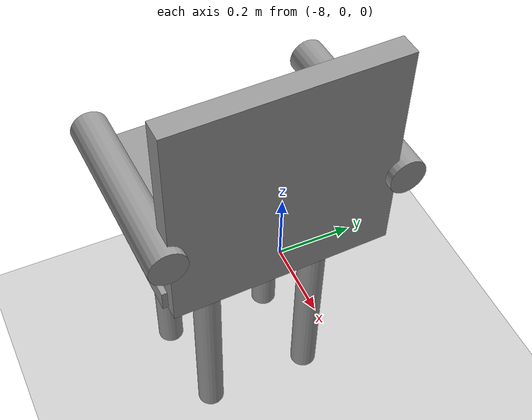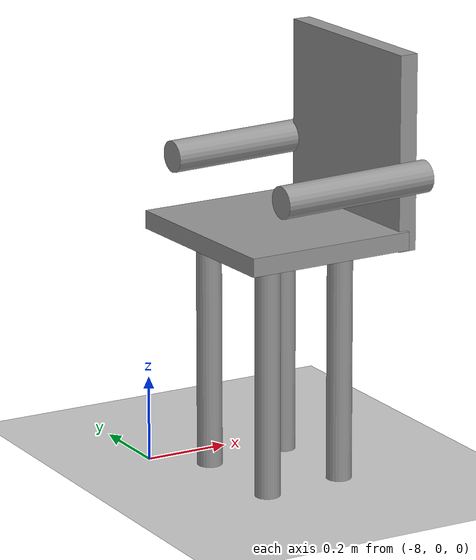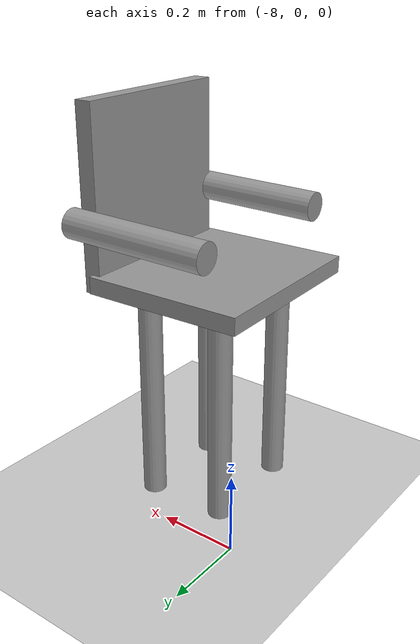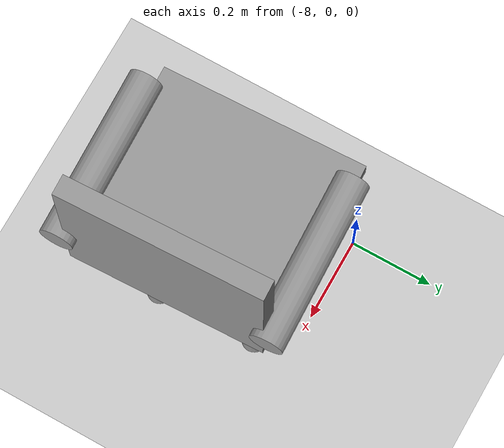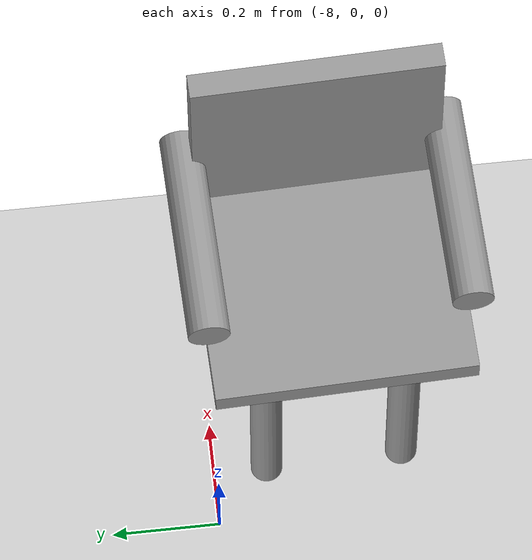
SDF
<sdf version="1.6">
 <world name="default">
  <model name="ground_plane">
   <static>1</static>
   <link name="link">
    <collision name="collision">
     <geometry><plane><normal>0 0 1</normal><size>100 100</size></plane></geometry>
     <surface>
      <contact><collide_bitmask>65535</collide_bitmask></contact>
      <friction><ode><mu>100</mu><mu2>50</mu2></ode></friction>
     </surface>
    </collision>
    <visual name="visual">
     <cast_shadows>0</cast_shadows>
     <geometry><plane><normal>0 0 1</normal><size>100 100</size></plane></geometry>
     <material>
      <script><uri>file://media/materials/scripts/gazebo.material</uri><name>Gazebo/Grey</name></script>
     </material>
    </visual>
   </link>
  </model>
  <model name="chair_clone_1_clone_0_clone">
   <link name="link_4">
    <inertial>
     <mass>0.00194051</mass>
     <inertia>
      <ixx>5.14044e-05</ixx>
      <ixy>0</ixy>
      <ixz>0</ixz>
      <iyy>5.14044e-05</iyy>
      <iyz>0</iyz>
      <izz>8.34973e-07</izz>
     </inertia>
    </inertial>
    <pose>-0.140129 -0.127166 -0.209129 0 -0 0</pose>
    <visual name="visual">
     <geometry><cylinder><radius>0.0293355</radius><length>0.561516</length></cylinder></geometry>
     <material>
      <lighting>1</lighting>
      <script><uri>file://media/materials/scripts/gazebo.material</uri><name>Gazebo/Grey</name></script>
      <emissive>0 0 0 1</emissive>
     </material>
    </visual>
    <collision name="collision">
     <geometry><cylinder><radius>0.029336</radius><length>0.561516</length></cylinder></geometry>
     <surface>
      <friction>
       <ode><mu>1</mu><mu2>1</mu2><fdir1>0 0 0</fdir1><slip1>0</slip1><slip2>0</slip2></ode>
       <torsional>
        <coefficient>1</coefficient>
        <patch_radius>0</patch_radius>
        <surface_radius>0</surface_radius>
        <use_patch_radius>1</use_patch_radius>
        <ode><slip>0</slip></ode>
       </torsional>
      </friction>
      <bounce><restitution_coefficient>0</restitution_coefficient><threshold>1e+06</threshold></bounce>
      <contact>
       <collide_without_contact>0</collide_without_contact>
       <collide_without_contact_bitmask>1</collide_without_contact_bitmask>
       <collide_bitmask>1</collide_bitmask>
       <ode>
        <soft_cfm>0</soft_cfm>
        <soft_erp>0.2</soft_erp>
        <kp>1e+13</kp>
        <kd>1</kd>
        <max_vel>0.01</max_vel>
        <min_depth>0</min_depth>
       </ode>
       <bullet>
        <split_impulse>1</split_impulse>
        <split_impulse_penetration_threshold>-0.01</split_impulse_penetration_threshold>
        <soft_cfm>0</soft_cfm>
        <soft_erp>0.2</soft_erp>
        <kp>1e+13</kp>
        <kd>1</kd>
       </bullet>
      </contact>
     </surface>
    </collision>
   </link>
   <link name="link_4_clone">
    <inertial>
     <mass>0.00194051</mass>
     <inertia>
      <ixx>5.14044e-05</ixx>
      <ixy>0</ixy>
      <ixz>0</ixz>
      <iyy>5.14044e-05</iyy>
      <iyz>0</iyz>
      <izz>8.34973e-07</izz>
     </inertia>
    </inertial>
    <pose>-0.139565 0.126187 -0.209129 0 -0 0</pose>
    <visual name="visual">
     <geometry><cylinder><radius>0.0293355</radius><length>0.561516</length></cylinder></geometry>
     <material>
      <lighting>1</lighting>
      <script><uri>file://media/materials/scripts/gazebo.material</uri><name>Gazebo/Grey</name></script>
      <shader type="pixel"/>
      <emissive>0 0 0 1</emissive>
     </material>
    </visual>
    <collision name="collision">
     <geometry><cylinder><radius>0.029336</radius><length>0.561516</length></cylinder></geometry>
     <surface>
      <friction>
       <ode><mu>1</mu><mu2>1</mu2><fdir1>0 0 0</fdir1><slip1>0</slip1><slip2>0</slip2></ode>
       <torsional>
        <coefficient>1</coefficient>
        <patch_radius>0</patch_radius>
        <surface_radius>0</surface_radius>
        <use_patch_radius>1</use_patch_radius>
        <ode><slip>0</slip></ode>
       </torsional>
      </friction>
      <bounce><restitution_coefficient>0</restitution_coefficient><threshold>1e+06</threshold></bounce>
      <contact>
       <collide_without_contact>0</collide_without_contact>
       <collide_without_contact_bitmask>1</collide_without_contact_bitmask>
       <collide_bitmask>1</collide_bitmask>
       <ode>
        <soft_cfm>0</soft_cfm>
        <soft_erp>0.2</soft_erp>
        <kp>1e+13</kp>
        <kd>1</kd>
        <max_vel>0.01</max_vel>
        <min_depth>0</min_depth>
       </ode>
       <bullet>
        <split_impulse>1</split_impulse>
        <split_impulse_penetration_threshold>-0.01</split_impulse_penetration_threshold>
        <soft_cfm>0</soft_cfm>
        <soft_erp>0.2</soft_erp>
        <kp>1e+13</kp>
        <kd>1</kd>
       </bullet>
      </contact>
     </surface>
    </collision>
   </link>
   <link name="link_4_clone_0">
    <inertial>
     <mass>0.00194051</mass>
     <inertia>
      <ixx>5.14044e-05</ixx>
      <ixy>0</ixy>
      <ixz>0</ixz>
      <iyy>5.14044e-05</iyy>
      <iyz>0</iyz>
      <izz>8.34973e-07</izz>
     </inertia>
    </inertial>
    <pose>0.062929 0.13105 -0.209129 0 -0 0</pose>
    <visual name="visual">
     <geometry><cylinder><radius>0.0293355</radius><length>0.561516</length></cylinder></geometry>
     <material>
      <lighting>1</lighting>
      <script><uri>file://media/materials/scripts/gazebo.material</uri><name>Gazebo/Grey</name></script>
      <shader type="pixel"/>
      <emissive>0 0 0 1</emissive>
     </material>
    </visual>
    <collision name="collision">
     <geometry><cylinder><radius>0.029336</radius><length>0.561516</length></cylinder></geometry>
     <surface>
      <friction>
       <ode><mu>1</mu><mu2>1</mu2><fdir1>0 0 0</fdir1><slip1>0</slip1><slip2>0</slip2></ode>
       <torsional>
        <coefficient>1</coefficient>
        <patch_radius>0</patch_radius>
        <surface_radius>0</surface_radius>
        <use_patch_radius>1</use_patch_radius>
        <ode><slip>0</slip></ode>
       </torsional>
      </friction>
      <bounce><restitution_coefficient>0</restitution_coefficient><threshold>1e+06</threshold></bounce>
      <contact>
       <collide_without_contact>0</collide_without_contact>
       <collide_without_contact_bitmask>1</collide_without_contact_bitmask>
       <collide_bitmask>1</collide_bitmask>
       <ode>
        <soft_cfm>0</soft_cfm>
        <soft_erp>0.2</soft_erp>
        <kp>1e+13</kp>
        <kd>1</kd>
        <max_vel>0.01</max_vel>
        <min_depth>0</min_depth>
       </ode>
       <bullet>
        <split_impulse>1</split_impulse>
        <split_impulse_penetration_threshold>-0.01</split_impulse_penetration_threshold>
        <soft_cfm>0</soft_cfm>
        <soft_erp>0.2</soft_erp>
        <kp>1e+13</kp>
        <kd>1</kd>
       </bullet>
      </contact>
     </surface>
    </collision>
   </link>
   <link name="link_4_clone_1">
    <inertial>
     <mass>0.00194051</mass>
     <inertia>
      <ixx>5.14044e-05</ixx>
      <ixy>0</ixy>
      <ixz>0</ixz>
      <iyy>5.14044e-05</iyy>
      <iyz>0</iyz>
      <izz>8.34973e-07</izz>
     </inertia>
    </inertial>
    <pose>0.061641 -0.111934 -0.209129 0 -0 0</pose>
    <visual name="visual">
     <geometry><cylinder><radius>0.0293355</radius><length>0.561516</length></cylinder></geometry>
     <material>
      <lighting>1</lighting>
      <script><uri>file://media/materials/scripts/gazebo.material</uri><name>Gazebo/Grey</name></script>
      <shader type="pixel"/>
      <emissive>0 0 0 1</emissive>
     </material>
    </visual>
    <collision name="collision">
     <geometry><cylinder><radius>0.029336</radius><length>0.561516</length></cylinder></geometry>
     <surface>
      <friction>
       <ode><mu>1</mu><mu2>1</mu2><fdir1>0 0 0</fdir1><slip1>0</slip1><slip2>0</slip2></ode>
       <torsional>
        <coefficient>1</coefficient>
        <patch_radius>0</patch_radius>
        <surface_radius>0</surface_radius>
        <use_patch_radius>1</use_patch_radius>
        <ode><slip>0</slip></ode>
       </torsional>
      </friction>
      <bounce><restitution_coefficient>0</restitution_coefficient><threshold>1e+06</threshold></bounce>
      <contact>
       <collide_without_contact>0</collide_without_contact>
       <collide_without_contact_bitmask>1</collide_without_contact_bitmask>
       <collide_bitmask>1</collide_bitmask>
       <ode>
        <soft_cfm>0</soft_cfm>
        <soft_erp>0.2</soft_erp>
        <kp>1e+13</kp>
        <kd>1</kd>
        <max_vel>0.01</max_vel>
        <min_depth>0</min_depth>
       </ode>
       <bullet>
        <split_impulse>1</split_impulse>
        <split_impulse_penetration_threshold>-0.01</split_impulse_penetration_threshold>
        <soft_cfm>0</soft_cfm>
        <soft_erp>0.2</soft_erp>
        <kp>1e+13</kp>
        <kd>1</kd>
       </bullet>
      </contact>
     </surface>
    </collision>
   </link>
   <link name="link_5">
    <inertial>
     <mass>0.00816884</mass>
     <inertia>
      <ixx>0.00015002</ixx>
      <ixy>0</ixy>
      <ixz>0</ixz>
      <iyy>0.000115328</iyy>
      <iyz>0</iyz>
      <izz>0.000262862</izz>
     </inertia>
    </inertial>
    <pose>-0.041662 -0.005028 0.089077 0 -0 0</pose>
    <visual name="visual">
     <geometry><box><size>0.409378 0.467496 0.042729</size></box></geometry>
     <material>
      <lighting>1</lighting>
      <script><uri>file://media/materials/scripts/gazebo.material</uri><name>Gazebo/Grey</name></script>
      <emissive>0 0 0 1</emissive>
     </material>
    </visual>
    <collision name="collision">
     <geometry><box><size>0.409378 0.467496 0.042729</size></box></geometry>
     <surface>
      <friction>
       <ode><mu>1</mu><mu2>1</mu2><fdir1>0 0 0</fdir1><slip1>0</slip1><slip2>0</slip2></ode>
       <torsional>
        <coefficient>1</coefficient>
        <patch_radius>0</patch_radius>
        <surface_radius>0</surface_radius>
        <use_patch_radius>1</use_patch_radius>
        <ode><slip>0</slip></ode>
       </torsional>
      </friction>
      <bounce><restitution_coefficient>0</restitution_coefficient><threshold>1e+06</threshold></bounce>
      <contact>
       <collide_without_contact>0</collide_without_contact>
       <collide_without_contact_bitmask>1</collide_without_contact_bitmask>
       <collide_bitmask>1</collide_bitmask>
       <ode>
        <soft_cfm>0</soft_cfm>
        <soft_erp>0.2</soft_erp>
        <kp>1e+13</kp>
        <kd>1</kd>
        <max_vel>0.01</max_vel>
        <min_depth>0</min_depth>
       </ode>
       <bullet>
        <split_impulse>1</split_impulse>
        <split_impulse_penetration_threshold>-0.01</split_impulse_penetration_threshold>
        <soft_cfm>0</soft_cfm>
        <soft_erp>0.2</soft_erp>
        <kp>1e+13</kp>
        <kd>1</kd>
       </bullet>
      </contact>
     </surface>
    </collision>
   </link>
   <link name="link_6">
    <inertial>
     <mass>0.00855687</mass>
     <inertia>
      <ixx>0.000285159</ixx>
      <ixy>0</ixy>
      <ixz>0</ixz>
      <iyy>0.000146983</iyy>
      <iyz>0</iyz>
      <izz>0.000140925</izz>
     </inertia>
    </inertial>
    <pose>0.165697 -0.006458 0.287866 0 -0 0</pose>
    <visual name="visual">
     <geometry><box><size>0.0439 0.442383 0.451884</size></box></geometry>
     <material>
      <lighting>1</lighting>
      <script><uri>file://media/materials/scripts/gazebo.material</uri><name>Gazebo/Grey</name></script>
      <emissive>0 0 0 1</emissive>
     </material>
    </visual>
    <collision name="collision">
     <geometry><box><size>0.0439 0.442383 0.451884</size></box></geometry>
     <surface>
      <friction>
       <ode><mu>1</mu><mu2>1</mu2><fdir1>0 0 0</fdir1><slip1>0</slip1><slip2>0</slip2></ode>
       <torsional>
        <coefficient>1</coefficient>
        <patch_radius>0</patch_radius>
        <surface_radius>0</surface_radius>
        <use_patch_radius>1</use_patch_radius>
        <ode><slip>0</slip></ode>
       </torsional>
      </friction>
      <bounce><restitution_coefficient>0</restitution_coefficient><threshold>1e+06</threshold></bounce>
      <contact>
       <collide_without_contact>0</collide_without_contact>
       <collide_without_contact_bitmask>1</collide_without_contact_bitmask>
       <collide_bitmask>1</collide_bitmask>
       <ode>
        <soft_cfm>0</soft_cfm>
        <soft_erp>0.2</soft_erp>
        <kp>1e+13</kp>
        <kd>1</kd>
        <max_vel>0.01</max_vel>
        <min_depth>0</min_depth>
       </ode>
       <bullet>
        <split_impulse>1</split_impulse>
        <split_impulse_penetration_threshold>-0.01</split_impulse_penetration_threshold>
        <soft_cfm>0</soft_cfm>
        <soft_erp>0.2</soft_erp>
        <kp>1e+13</kp>
        <kd>1</kd>
       </bullet>
      </contact>
     </surface>
    </collision>
   </link>
   <link name="link_7">
    <inertial>
     <mass>0.00209129</mass>
     <inertia>
      <ixx>2.57536e-05</ixx>
      <ixy>0</ixy>
      <ixz>0</ixz>
      <iyy>2.57536e-05</iyy>
      <iyz>0</iyz>
      <izz>1.44551e-06</izz>
     </inertia>
    </inertial>
    <pose>0.0147 0.228665 0.230372 0 1.55081 0</pose>
    <visual name="visual">
     <geometry><cylinder><radius>0.0371808</radius><length>0.378984</length></cylinder></geometry>
     <material>
      <lighting>1</lighting>
      <script><uri>file://media/materials/scripts/gazebo.material</uri><name>Gazebo/Grey</name></script>
      <emissive>0 0 0 1</emissive>
     </material>
    </visual>
    <collision name="collision">
     <geometry><cylinder><radius>0.037181</radius><length>0.378984</length></cylinder></geometry>
     <surface>
      <friction>
       <ode><mu>1</mu><mu2>1</mu2><fdir1>0 0 0</fdir1><slip1>0</slip1><slip2>0</slip2></ode>
       <torsional>
        <coefficient>1</coefficient>
        <patch_radius>0</patch_radius>
        <surface_radius>0</surface_radius>
        <use_patch_radius>1</use_patch_radius>
        <ode><slip>0</slip></ode>
       </torsional>
      </friction>
      <bounce><restitution_coefficient>0</restitution_coefficient><threshold>1e+06</threshold></bounce>
      <contact>
       <collide_without_contact>0</collide_without_contact>
       <collide_without_contact_bitmask>1</collide_without_contact_bitmask>
       <collide_bitmask>1</collide_bitmask>
       <ode>
        <soft_cfm>0</soft_cfm>
        <soft_erp>0.2</soft_erp>
        <kp>1e+13</kp>
        <kd>1</kd>
        <max_vel>0.01</max_vel>
        <min_depth>0</min_depth>
       </ode>
       <bullet>
        <split_impulse>1</split_impulse>
        <split_impulse_penetration_threshold>-0.01</split_impulse_penetration_threshold>
        <soft_cfm>0</soft_cfm>
        <soft_erp>0.2</soft_erp>
        <kp>1e+13</kp>
        <kd>1</kd>
       </bullet>
      </contact>
     </surface>
    </collision>
   </link>
   <link name="link_7_clone">
    <inertial>
     <mass>0.00209129</mass>
     <inertia>
      <ixx>2.57536e-05</ixx>
      <ixy>0</ixy>
      <ixz>0</ixz>
      <iyy>2.57536e-05</iyy>
      <iyz>0</iyz>
      <izz>1.44551e-06</izz>
     </inertia>
    </inertial>
    <pose>0.01639 -0.235319 0.229201 0 1.55081 0</pose>
    <visual name="visual">
     <geometry><cylinder><radius>0.0371808</radius><length>0.378984</length></cylinder></geometry>
     <material>
      <lighting>1</lighting>
      <script><uri>file://media/materials/scripts/gazebo.material</uri><name>Gazebo/Grey</name></script>
      <shader type="pixel"/>
      <emissive>0 0 0 1</emissive>
     </material>
    </visual>
    <collision name="collision">
     <geometry><cylinder><radius>0.037181</radius><length>0.378984</length></cylinder></geometry>
     <surface>
      <friction>
       <ode><mu>1</mu><mu2>1</mu2><fdir1>0 0 0</fdir1><slip1>0</slip1><slip2>0</slip2></ode>
       <torsional>
        <coefficient>1</coefficient>
        <patch_radius>0</patch_radius>
        <surface_radius>0</surface_radius>
        <use_patch_radius>1</use_patch_radius>
        <ode><slip>0</slip></ode>
       </torsional>
      </friction>
      <bounce><restitution_coefficient>0</restitution_coefficient><threshold>1e+06</threshold></bounce>
      <contact>
       <collide_without_contact>0</collide_without_contact>
       <collide_without_contact_bitmask>1</collide_without_contact_bitmask>
       <collide_bitmask>1</collide_bitmask>
       <ode>
        <soft_cfm>0</soft_cfm>
        <soft_erp>0.2</soft_erp>
        <kp>1e+13</kp>
        <kd>1</kd>
        <max_vel>0.01</max_vel>
        <min_depth>0</min_depth>
       </ode>
       <bullet>
        <split_impulse>1</split_impulse>
        <split_impulse_penetration_threshold>-0.01</split_impulse_penetration_threshold>
        <soft_cfm>0</soft_cfm>
        <soft_erp>0.2</soft_erp>
        <kp>1e+13</kp>
        <kd>1</kd>
       </bullet>
      </contact>
     </surface>
    </collision>
   </link>
   <joint name="link_5_JOINT_2" type="fixed">
    <parent>link_5</parent>
    <child>link_4_clone_1</child>
    <physics>
     <ode><limit><cfm>0</cfm><erp>0.2</erp></limit><suspension><cfm>0</cfm><erp>0.2</erp></suspension></ode>
    </physics>
   </joint>
   <joint name="link_5_JOINT_3" type="fixed">
    <parent>link_5</parent>
    <child>link_4</child>
    <physics>
     <ode><limit><cfm>0</cfm><erp>0.2</erp></limit><suspension><cfm>0</cfm><erp>0.2</erp></suspension></ode>
    </physics>
   </joint>
   <joint name="link_5_JOINT_4" type="fixed">
    <parent>link_5</parent>
    <child>link_4_clone_0</child>
    <physics>
     <ode><limit><cfm>0</cfm><erp>0.2</erp></limit><suspension><cfm>0</cfm><erp>0.2</erp></suspension></ode>
    </physics>
   </joint>
   <joint name="link_5_JOINT_5" type="fixed">
    <parent>link_5</parent>
    <child>link_4_clone</child>
    <physics>
     <ode><limit><cfm>0</cfm><erp>0.2</erp></limit><suspension><cfm>0</cfm><erp>0.2</erp></suspension></ode>
    </physics>
   </joint>
   <joint name="link_5_JOINT_6" type="fixed">
    <parent>link_5</parent>
    <child>link_6</child>
    <physics>
     <ode><limit><cfm>0</cfm><erp>0.2</erp></limit><suspension><cfm>0</cfm><erp>0.2</erp></suspension></ode>
    </physics>
   </joint>
   <joint name="link_5_JOINT_7" type="fixed">
    <parent>link_5</parent>
    <child>link_7</child>
    <physics>
     <ode><limit><cfm>0</cfm><erp>0.2</erp></limit><suspension><cfm>0</cfm><erp>0.2</erp></suspension></ode>
    </physics>
   </joint>
   <joint name="link_5_JOINT_8" type="fixed">
    <parent>link_5</parent>
    <child>link_7_clone</child>
    <physics>
     <ode><limit><cfm>0</cfm><erp>0.2</erp></limit><suspension><cfm>0</cfm><erp>0.2</erp></suspension></ode>
    </physics>
   </joint>
   <static>0</static>
   <pose>-7.75016 -0.219487 0.489878 0 3.3e-05 0.034411</pose>
  </model>
 </world>
</sdf>
